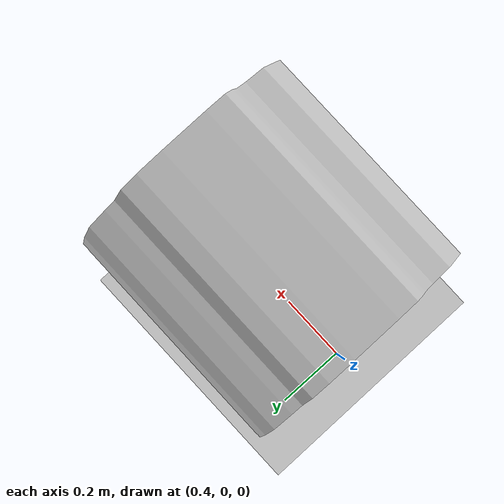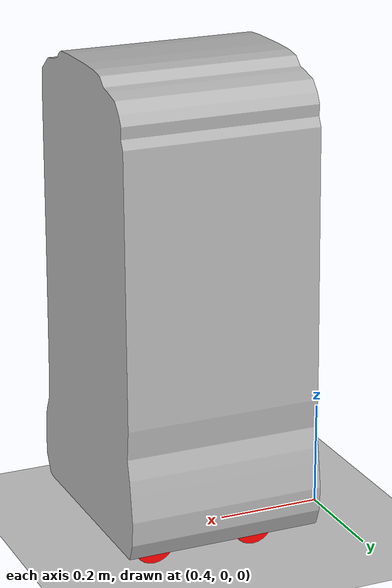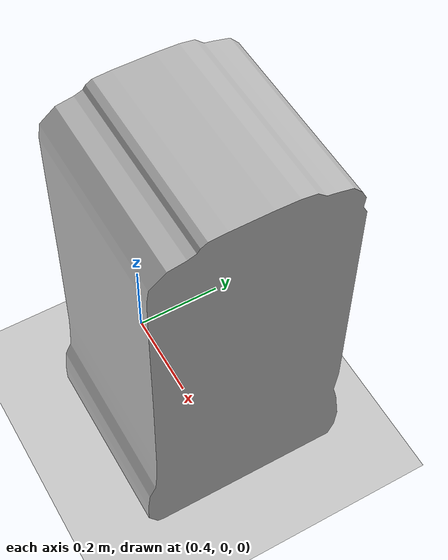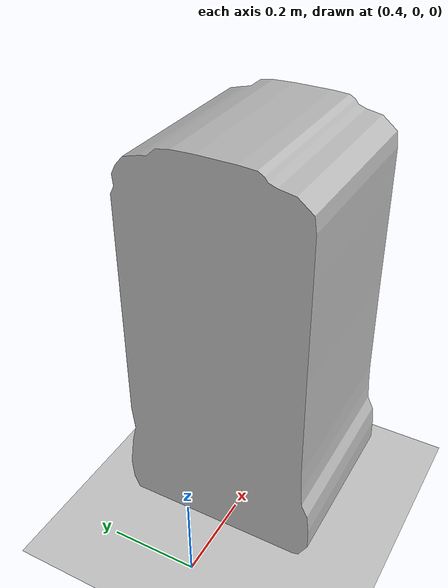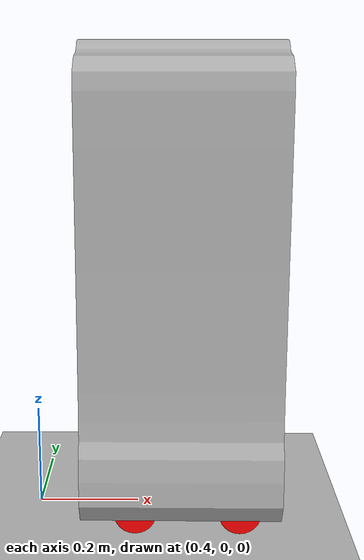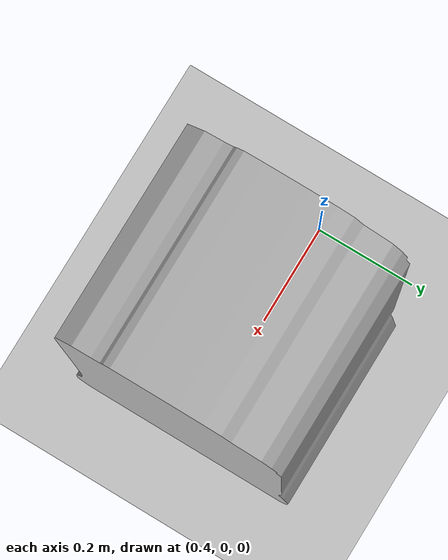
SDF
<?xml version="1.0" ?>
<sdf version="1.8">
    <world name="flashbot">
        <!-- Physics - (set to default) -->
        <physics name="1ms" type="ignored">
            <max_step_size>0.001</max_step_size>
            <real_time_factor>1.0</real_time_factor>
        </physics>

        <!-- === PLUGINS ==== -->
        <plugin filename="libignition-gazebo-physics-system.so" name="ignition::gazebo::systems::Physics">
        </plugin>
        <plugin filename="libignition-gazebo-user-commands-system.so" name="ignition::gazebo::systems::UserCommands">
        </plugin>
        <plugin filename="libignition-gazebo-scene-broadcaster-system.so" name="ignition::gazebo::systems::SceneBroadcaster">
        </plugin>

        <light type="directional" name="sun">
            <cast_shadows>true</cast_shadows>
            <pose>0 0 10 0 0 0</pose>
            <diffuse>0.8 0.8 0.8 1</diffuse>
            <specular>0.2 0.2 0.2 1</specular>
            <attenuation>
                <range>1000</range>
                <constant>0.9</constant>
                <linear>0.01</linear>
                <quadratic>0.001</quadratic>
            </attenuation>
            <direction>-0.5 0.1 -0.9</direction>
        </light>

        <model name="ground_plane">
            <static>true</static>
            <link name="link">
                <collision name="collision">
                    <geometry>
                        <plane>
                            <normal>0 0 1</normal>
                        </plane>
                    </geometry>
                </collision>
                <visual name="visual">
                    <geometry>
                        <plane>
                            <normal>0 0 1</normal>
                            <size>100 100</size>
                        </plane>
                    </geometry>
                    <material>
                        <ambient>0.8 0.8 0.8 1</ambient>
                        <diffuse>0.8 0.8 0.8 1</diffuse>
                        <specular>0.8 0.8 0.8 1</specular>
                    </material>
                </visual>
            </link>
        </model>

        <model name='flashbot' canonical_link='chassis'>
           <!-- CAR CONTROL -->
            <!-- Driver Plugin -->
            <plugin filename="libignition-gazebo-diff-drive-system.so" name="ignition::gazebo::systems::DiffDrive">
                <left_joint>left_front_wheel_joint</left_joint>
                <right_joint>right_front_wheel_joint</right_joint>
                <wheel_separation>1.2</wheel_separation>

                <wheel_radius>0.4</wheel_radius>
                <odom_publish_frequency>1</odom_publish_frequency>
                <topic>cmd_vel</topic>
            </plugin>

            <!-- Moving Forward -->
            <plugin filename="libignition-gazebo-triggered-publisher-system.so"
                    name="ignition::gazebo::systems::TriggeredPublisher">
                <input type="ignition.msgs.Int32" topic="/keyboard/keypress">
                    <match field="data">16777235</match>
                </input>
                <output type="ignition.msgs.Twist" topic="/cmd_vel">
                    linear: {x: 0.5}, angular: {z: 0.0}
                </output>
            </plugin>

            <!-- Moving Backward -->
            <plugin filename="libignition-gazebo-triggered-publisher-system.so"
                    name="ignition::gazebo::systems::TriggeredPublisher">
                <input type="ignition.msgs.Int32" topic="/keyboard/keypress">
                    <match field="data">16777237</match>
                </input>
                <output type="ignition.msgs.Twist" topic="/cmd_vel">
                    linear: {x: -0.5}, angular: {z: 0.0}
                </output>
            </plugin>

            <!-- Moving left -->
            <plugin filename="libignition-gazebo-triggered-publisher-system.so"
                    name="ignition::gazebo::systems::TriggeredPublisher">
                <input type="ignition.msgs.Int32" topic="/keyboard/keypress">
                    <match field="data">16777234</match>
                </input>
                <output type="ignition.msgs.Twist" topic="/cmd_vel">
                    linear: {x: 0.0}, angular: {z: 0.5}
                </output>
            </plugin>

            <!-- Moving Right -->
            <plugin filename="libignition-gazebo-triggered-publisher-system.so"
                    name="ignition::gazebo::systems::TriggeredPublisher">
                <input type="ignition.msgs.Int32" topic="/keyboard/keypress">
                    <match field="data">16777236</match>
                </input>
                <output type="ignition.msgs.Twist" topic="/cmd_vel">
                    linear: {x: 0.0}, angular: {z: -0.5}
                </output>
            </plugin>

            <!--the pose is relative to the world by default-->
            <pose relative_to='world'>0 0 0.08 0 0 0</pose>
            <!-- ## Main Chassis ## -->
            <link name='chassis'>
                <pose relative_to='__model__'>0.5 0 0.4 0 0 0</pose>
                <inertial>                    <!--inertial properties of the link mass, inertia matix-->
                    <mass>1.14395</mass>
                    <inertia>
                        <ixx>0.095329</ixx>
                        <ixy>0</ixy>
                        <ixz>0</ixz>
                        <iyy>0.381317</iyy>
                        <iyz>0</iyz>
                        <izz>0.476646</izz>
                    </inertia>
                </inertial>
                <visual name='visual'>
                    <geometry>
                        <mesh>
                            <uri>model://flashbot/meshes/flashbot.dae</uri>
                        </mesh>
                    </geometry>
                </visual>
                <collision name='collision'>
                    <geometry>
                        <box>
                            <size>1.0 1.0 0.5</size>
                        </box>
                    </geometry>
                </collision>
            </link>

            <!-- ######### WHEELS SECTION - (angles are in radians) #########  -->

            <!-- ## FRONT WHEELS ## -->
            <!-- Right front wheel -->
            <link name='right_front_wheel'>
                <pose relative_to="chassis">0.3 -0.15 -0.43 -1.5707 0 0</pose>
                <inertial>
                    <mass>1</mass>
                    <inertia>
                        <ixx>0.043333</ixx>
                        <ixy>0</ixy>
                        <ixz>0</ixz>
                        <iyy>0.043333</iyy>
                        <iyz>0</iyz>
                        <izz>0.08</izz>
                    </inertia>
                </inertial>
                <visual name='visual'>
                    <geometry>
                        <cylinder>
                            <radius>0.04</radius>
                            <length>0.02</length>
                        </cylinder>
                    </geometry>
                    <material>
                        <ambient>1.0 0.0 0.0 1</ambient>
                        <diffuse>1.0 0.0 0.0 1</diffuse>
                        <specular>1.0 0.0 0.0 1</specular>
                    </material>
                </visual>
                <collision name='collision'>
                    <geometry>
                        <cylinder>
                            <radius>0.04</radius>
                            <length>0.02</length>
                        </cylinder>
                    </geometry>
                </collision>
            </link>
            <!-- Left front wheel -->
            <link name='left_front_wheel'>
                <pose relative_to="chassis">0.3 0.13 -0.43 -1.5707 0 0</pose>
                <inertial>
                    <mass>1</mass>
                    <inertia>
                        <ixx>0.043333</ixx>
                        <ixy>0</ixy>
                        <ixz>0</ixz>
                        <iyy>0.043333</iyy>
                        <iyz>0</iyz>
                        <izz>0.08</izz>
                    </inertia>
                </inertial>
                <visual name='visual'>
                    <geometry>
                        <cylinder>
                            <radius>0.04</radius>
                            <length>0.02</length>
                        </cylinder>
                    </geometry>
                    <material>
                        <ambient>1.0 0.0 0.0 1</ambient>
                        <diffuse>1.0 0.0 0.0 1</diffuse>
                        <specular>1.0 0.0 0.0 1</specular>
                    </material>
                </visual>
                <collision name='collision'>
                    <geometry>
                        <cylinder>
                            <radius>0.04</radius>
                            <length>0.02</length>
                        </cylinder>
                    </geometry>
                </collision>
            </link>

            <!-- ## BACK WHEELS ## -->
            <!-- Right back wheel -->
            <link name='right_back_wheel'>
                <pose relative_to="chassis">0.1 -0.15 -0.43 -1.5707 0 0</pose>
                <inertial>
                    <mass>1</mass>
                    <inertia>
                        <ixx>0.043333</ixx>
                        <ixy>0</ixy>
                        <ixz>0</ixz>
                        <iyy>0.043333</iyy>
                        <iyz>0</iyz>
                        <izz>0.08</izz>
                    </inertia>
                </inertial>
                <visual name='visual'>
                    <geometry>
                        <cylinder>
                            <radius>0.04</radius>
                            <length>0.02</length>
                        </cylinder>
                    </geometry>
                    <material>
                        <ambient>1.0 0.0 0.0 1</ambient>
                        <diffuse>1.0 0.0 0.0 1</diffuse>
                        <specular>1.0 0.0 0.0 1</specular>
                    </material>
                </visual>
                <collision name='collision'>
                    <geometry>
                        <cylinder>
                            <radius>0.04</radius>
                            <length>0.02</length>
                        </cylinder>
                    </geometry>
                </collision>
            </link>
            <!-- Left back wheel -->
            <link name='left_back_wheel'>
                <pose relative_to="chassis">0.1 0.13 -0.43 -1.5707 0 0</pose>
                <inertial>
                    <mass>1</mass>
                    <inertia>
                        <ixx>0.043333</ixx>
                        <ixy>0</ixy>
                        <ixz>0</ixz>
                        <iyy>0.043333</iyy>
                        <iyz>0</iyz>
                        <izz>0.08</izz>
                    </inertia>
                </inertial>
                <visual name='visual'>
                    <geometry>
                        <cylinder>
                            <radius>0.04</radius>
                            <length>0.02</length>
                        </cylinder>
                    </geometry>
                    <material>
                        <ambient>1.0 0.0 0.0 1</ambient>
                        <diffuse>1.0 0.0 0.0 1</diffuse>
                        <specular>1.0 0.0 0.0 1</specular>
                    </material>
                </visual>
                <collision name='collision'>
                    <geometry>
                        <cylinder>
                            <radius>0.04</radius>
                            <length>0.02</length>
                        </cylinder>
                    </geometry>
                </collision>
            </link>

            <!-- #################### END OF WHEELS #########################  -->

            <!-- ## CASTER FRAME ## -->
            <!--arbitrary frame-->
            <frame name="caster_frame" attached_to='chassis'>
                <pose>0.8 0 -0.2 0 0 0</pose>
            </frame>
            <!--caster wheel-->
            <link name='caster'>
                <pose relative_to='caster_frame'/>
                <inertial>
                    <mass>1</mass>
                    <inertia>
                        <ixx>0.016</ixx>
                        <ixy>0</ixy>
                        <ixz>0</ixz>
                        <iyy>0.016</iyy>
                        <iyz>0</iyz>
                        <izz>0.016</izz>
                    </inertia>
                </inertial>
                <collision name='collision'>
                    <geometry>
                        <sphere>
                            <radius>0.2</radius>
                        </sphere>
                    </geometry>
                </collision>
            </link>

            <!-- #################### JOINTS SECTION (START) #########################  -->
            <!-- LEFT WHEEL -->
            <!--left back wheel joint-->
            <joint name='left_back_wheel_joint' type='revolute'>
                <pose relative_to='left_back_wheel'/>
                <parent>chassis</parent>
                <child>left_back_wheel</child>
                <axis>
                    <xyz expressed_in='__model__'>0 1 0</xyz>                    <!--can be descired to any frame or even arbitrary frames-->
                    <limit>
                        <lower>-1.79769e+308</lower>                        <!--negative infinity-->
                        <upper>1.79769e+308</upper>                        <!--positive infinity-->
                    </limit>
                </axis>
            </joint>
            <!--left front wheel joint-->
            <joint name='left_front_wheel_joint' type='revolute'>
                <pose relative_to='left_front_wheel'/>
                <parent>chassis</parent>
                <child>left_front_wheel</child>
                <axis>
                    <xyz expressed_in='__model__'>0 1 0</xyz>                    <!--can be descired to any frame or even arbitrary frames-->
                    <limit>
                        <lower>-1.79769e+308</lower>                        <!--negative infinity-->
                        <upper>1.79769e+308</upper>                        <!--positive infinity-->
                    </limit>
                </axis>
            </joint>

            <!-- RIGHT WHEEL -->
            <!--right back wheel joint-->
            <joint name='right_back_wheel_joint' type='revolute'>
                <pose relative_to='right_back_wheel'/>
                <parent>chassis</parent>
                <child>right_back_wheel</child>
                <axis>
                    <xyz expressed_in='__model__'>0 1 0</xyz>
                    <limit>
                        <lower>-1.79769e+308</lower>                        <!--negative infinity-->
                        <upper>1.79769e+308</upper>                        <!--positive infinity-->
                    </limit>
                </axis>
            </joint>
            <!--right front wheel joint-->
            <joint name='right_front_wheel_joint' type='revolute'>
                <pose relative_to='right_front_wheel'/>
                <parent>chassis</parent>
                <child>right_front_wheel</child>
                <axis>
                    <xyz expressed_in='__model__'>0 1 0</xyz>
                    <limit>
                        <lower>-1.79769e+308</lower>                        <!--negative infinity-->
                        <upper>1.79769e+308</upper>                        <!--positive infinity-->
                    </limit>
                </axis>
            </joint>

            <!-- ## CASTER WHEEL ## -->
            <!--caster wheel joint-->            <!--pose defult value is the child-->
            <joint name='caster_wheel' type='ball'>
                <parent>chassis</parent>
                <child>caster</child>
            </joint>

            <!-- ####################### JOINTS SECTION (END) #########################  -->
        </model>
    </world>
</sdf>
